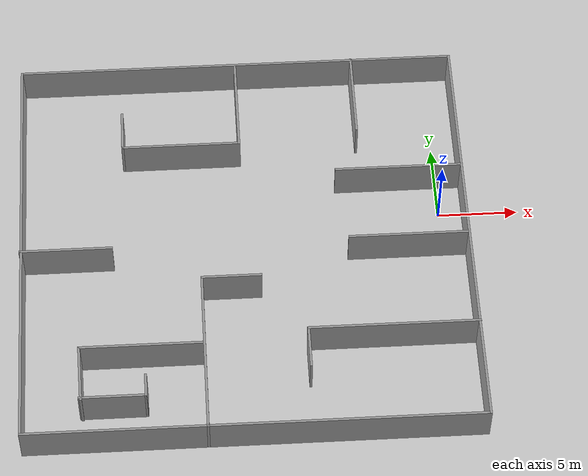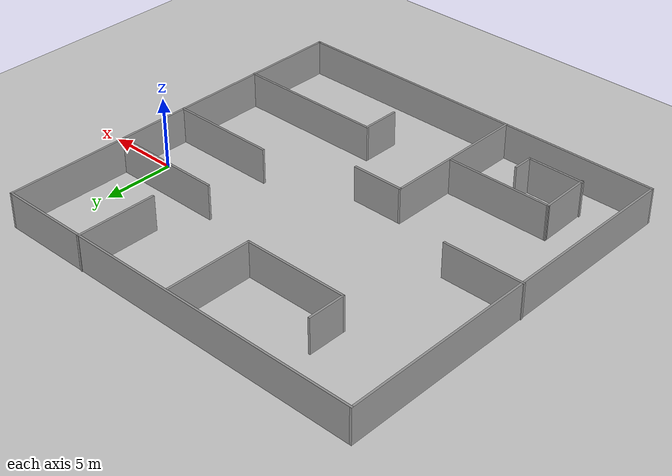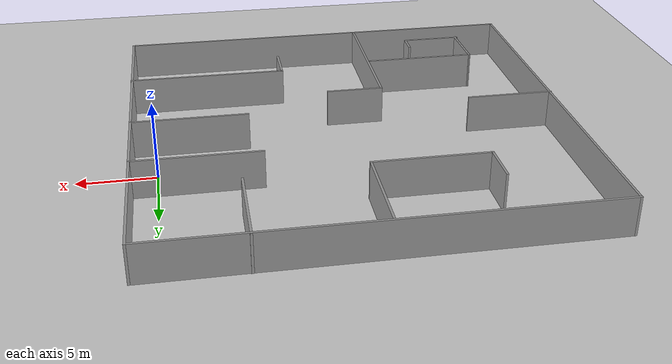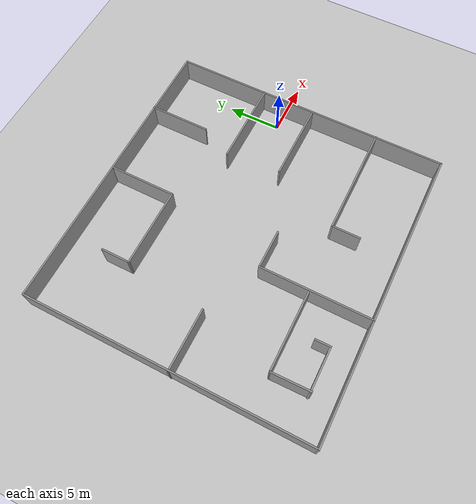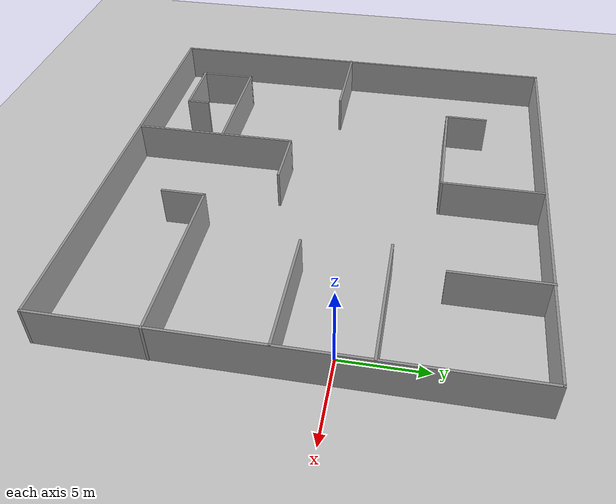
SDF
<sdf version="1.7">
 <world name="default">
  <light name="sun" type="directional">
   <pose>0 0 10 0 -0 0</pose>
   <diffuse>0.8 0.8 0.8 1</diffuse>
   <specular>0.2 0.2 0.2 1</specular>
   <attenuation>
    <range>1000</range>
    <constant>0.9</constant>
    <linear>0.01</linear>
    <quadratic>0.001</quadratic>
   </attenuation>
   <direction>-0.5 0.1 -0.9</direction>
   <spot><inner_angle>0</inner_angle><outer_angle>0</outer_angle><falloff>0</falloff></spot>
  </light>
  <model name="ground_plane">
   <static>1</static>
   <link name="link">
    <collision name="collision">
     <geometry><plane><normal>0 0 1</normal><size>100 100</size></plane></geometry>
     <surface>
      <contact><collide_bitmask>65535</collide_bitmask></contact>
      <friction><ode><mu>100</mu><mu2>50</mu2></ode></friction>
     </surface>
    </collision>
    <visual name="visual">
     <cast_shadows>0</cast_shadows>
     <geometry><plane><normal>0 0 1</normal><size>100 100</size></plane></geometry>
     <material>
      <script><uri>file://media/materials/scripts/gazebo.material</uri><name>Gazebo/Grey</name></script>
     </material>
    </visual>
   </link>
  </model>
  <physics type="ode">
   <ode>
    <solver><type>quick</type><iters>1000</iters><sor>1.3</sor></solver>
    <constraints>
     <cfm>0</cfm>
     <erp>0.2</erp>
     <contact_max_correcting_vel>100</contact_max_correcting_vel>
     <contact_surface_layer>0.001</contact_surface_layer>
    </constraints>
   </ode>
   <max_step_size>0.01</max_step_size>
   <real_time_factor>1</real_time_factor>
   <real_time_update_rate>100</real_time_update_rate>
   <gravity>0 0 -9.8</gravity>
  </physics>
  <scene><ambient>0.4 0.4 0.4 1</ambient><background>0.7 0.7 0.7 1</background><shadows>1</shadows></scene>
  <spherical_coordinates>
   <surface_model>EARTH_WGS84</surface_model>
   <latitude_deg>0</latitude_deg>
   <longitude_deg>0</longitude_deg>
   <elevation>0</elevation>
   <heading_deg>0</heading_deg>
  </spherical_coordinates>
  <model name="world1">
   <pose>-12.2737 -2.45076 0 0 -0 0</pose>
   <link name="Wall_10">
    <collision name="Wall_10_Collision">
     <geometry><box><size>7.5 0.15 2.5</size></box></geometry>
     <pose>0 0 1.25 0 -0 0</pose>
    </collision>
    <visual name="Wall_10_Visual">
     <pose>0 0 1.25 0 -0 0</pose>
     <geometry><box><size>7.5 0.15 2.5</size></box></geometry>
     <material>
      <script><uri>file://media/materials/scripts/gazebo.material</uri><name>Gazebo/Grey</name></script>
      <ambient>1 1 1 1</ambient>
     </material>
     <meta><layer>0</layer></meta>
    </visual>
    <pose>10.1072 -0.461458 0 0 -0 3.14159</pose>
   </link>
   <link name="Wall_12">
    <collision name="Wall_12_Collision">
     <geometry><box><size>10.5 0.15 2.5</size></box></geometry>
     <pose>0 0 1.25 0 -0 0</pose>
    </collision>
    <visual name="Wall_12_Visual">
     <pose>0 0 1.25 0 -0 0</pose>
     <geometry><box><size>10.5 0.15 2.5</size></box></geometry>
     <material>
      <script><uri>file://media/materials/scripts/gazebo.material</uri><name>Gazebo/Grey</name></script>
      <ambient>1 1 1 1</ambient>
     </material>
     <meta><layer>0</layer></meta>
    </visual>
    <pose>8.66877 -6.92188 0 0 -0 3.14159</pose>
   </link>
   <link name="Wall_13">
    <collision name="Wall_13_Collision">
     <geometry><box><size>2.75 0.15 2.5</size></box></geometry>
     <pose>0 0 1.25 0 -0 0</pose>
    </collision>
    <visual name="Wall_13_Visual">
     <pose>0 0 1.25 0 -0 0</pose>
     <geometry><box><size>2.75 0.15 2.5</size></box></geometry>
     <material>
      <script><uri>file://media/materials/scripts/gazebo.material</uri><name>Gazebo/Grey</name></script>
      <ambient>1 1 1 1</ambient>
     </material>
     <meta><layer>0</layer></meta>
    </visual>
    <pose>3.49377 -8.22189 0 0 -0 -1.5708</pose>
   </link>
   <link name="Wall_15">
    <collision name="Wall_15_Collision">
     <geometry><box><size>8 0.15 2.5</size></box></geometry>
     <pose>0 0 1.25 0 -0 0</pose>
    </collision>
    <visual name="Wall_15_Visual">
     <pose>0 0 1.25 0 -0 0</pose>
     <geometry><box><size>8 0.15 2.5</size></box></geometry>
     <material>
      <script><uri>file://media/materials/scripts/gazebo.material</uri><name>Gazebo/Grey</name></script>
      <ambient>1 1 1 1</ambient>
     </material>
     <meta><layer>0</layer></meta>
    </visual>
    <pose>9.85724 4.64536 0 0 -0 3.14159</pose>
   </link>
   <link name="Wall_17">
    <collision name="Wall_17_Collision">
     <geometry><box><size>6.25 0.15 2.5</size></box></geometry>
     <pose>0 0 1.25 0 -0 0</pose>
    </collision>
    <visual name="Wall_17_Visual">
     <pose>0 0 1.25 0 -0 0</pose>
     <geometry><box><size>6.25 0.15 2.5</size></box></geometry>
     <material>
      <script><uri>file://media/materials/scripts/gazebo.material</uri><name>Gazebo/Grey</name></script>
      <ambient>1 1 1 1</ambient>
     </material>
     <meta><layer>0</layer></meta>
    </visual>
    <pose>-0.061528 10.0862 0 0 -0 -1.5708</pose>
   </link>
   <link name="Wall_18">
    <collision name="Wall_18_Collision">
     <geometry><box><size>7.5 0.15 2.5</size></box></geometry>
     <pose>0 0 1.25 0 -0 0</pose>
    </collision>
    <visual name="Wall_18_Visual">
     <pose>0 0 1.25 0 -0 0</pose>
     <geometry><box><size>7.5 0.15 2.5</size></box></geometry>
     <material>
      <script><uri>file://media/materials/scripts/gazebo.material</uri><name>Gazebo/Grey</name></script>
      <ambient>1 1 1 1</ambient>
     </material>
     <meta><layer>0</layer></meta>
    </visual>
    <pose>-3.73653 7.0362 0 0 -0 3.14159</pose>
   </link>
   <link name="Wall_20">
    <collision name="Wall_20_Collision">
     <geometry><box><size>5.75 0.15 2.5</size></box></geometry>
     <pose>0 0 1.25 0 -0 0</pose>
    </collision>
    <visual name="Wall_20_Visual">
     <pose>0 0 1.25 0 -0 0</pose>
     <geometry><box><size>5.75 0.15 2.5</size></box></geometry>
     <material>
      <script><uri>file://media/materials/scripts/gazebo.material</uri><name>Gazebo/Grey</name></script>
      <ambient>1 1 1 1</ambient>
     </material>
     <meta><layer>0</layer></meta>
    </visual>
    <pose>-11.0438 -0.522986 0 0 -0 0</pose>
   </link>
   <link name="Wall_22">
    <collision name="Wall_22_Collision">
     <geometry><box><size>11 0.15 2.5</size></box></geometry>
     <pose>0 0 1.25 0 -0 0</pose>
    </collision>
    <visual name="Wall_22_Visual">
     <pose>0 0 1.25 0 -0 0</pose>
     <geometry><box><size>11 0.15 2.5</size></box></geometry>
     <material>
      <script><uri>file://media/materials/scripts/gazebo.material</uri><name>Gazebo/Grey</name></script>
      <ambient>1 1 1 1</ambient>
     </material>
     <meta><layer>0</layer></meta>
    </visual>
    <pose>-8.35724 -13.3208 0 0 -0 0</pose>
   </link>
   <link name="Wall_25">
    <collision name="Wall_25_Collision">
     <geometry><box><size>5.75 0.15 2.5</size></box></geometry>
     <pose>0 0 1.25 0 -0 0</pose>
    </collision>
    <visual name="Wall_25_Visual">
     <pose>0 0 1.25 0 -0 0</pose>
     <geometry><box><size>5.75 0.15 2.5</size></box></geometry>
     <material>
      <script><uri>file://media/materials/scripts/gazebo.material</uri><name>Gazebo/Grey</name></script>
      <ambient>1 1 1 1</ambient>
     </material>
     <meta><layer>0</layer></meta>
    </visual>
    <pose>7.44487 10.5208 0 0 -0 -1.5708</pose>
   </link>
   <link name="Wall_3">
    <collision name="Wall_3_Collision">
     <geometry><box><size>26.75 0.15 2.5</size></box></geometry>
     <pose>0 0 1.25 0 -0 0</pose>
    </collision>
    <visual name="Wall_3_Visual">
     <pose>0 0 1.25 0 -0 0</pose>
     <geometry><box><size>26.75 0.15 2.5</size></box></geometry>
     <material>
      <script><uri>file://media/materials/scripts/gazebo.material</uri><name>Gazebo/Grey</name></script>
      <ambient>1 1 1 1</ambient>
     </material>
     <meta><layer>0</layer></meta>
    </visual>
    <pose>-13.7822 -0.020784 0 0 -0 1.5708</pose>
   </link>
   <link name="Wall_30">
    <collision name="Wall_30_Collision">
     <geometry><box><size>3.75 0.15 2.5</size></box></geometry>
     <pose>0 0 1.25 0 -0 0</pose>
    </collision>
    <visual name="Wall_30_Visual">
     <pose>0 0 1.25 0 -0 0</pose>
     <geometry><box><size>3.75 0.15 2.5</size></box></geometry>
     <material>
      <script><uri>file://media/materials/scripts/gazebo.material</uri><name>Gazebo/Grey</name></script>
      <ambient>1 1 1 1</ambient>
     </material>
     <meta><layer>0</layer></meta>
    </visual>
    <pose>-0.982244 -2.97078 0 0 -0 0</pose>
   </link>
   <link name="Wall_32">
    <collision name="Wall_32_Collision">
     <geometry><box><size>2.75 0.15 2.5</size></box></geometry>
     <pose>0 0 1.25 0 -0 0</pose>
    </collision>
    <visual name="Wall_32_Visual">
     <pose>0 0 1.25 0 -0 0</pose>
     <geometry><box><size>2.75 0.15 2.5</size></box></geometry>
     <material>
      <script><uri>file://media/materials/scripts/gazebo.material</uri><name>Gazebo/Grey</name></script>
      <ambient>1 1 1 1</ambient>
     </material>
     <meta><layer>0</layer></meta>
    </visual>
    <pose>-7.41153 8.3362 0 0 -0 1.5708</pose>
   </link>
   <link name="Wall_36">
    <collision name="Wall_36_Collision">
     <geometry><box><size>7.5 0.15 2.5</size></box></geometry>
     <pose>0 0 1.25 0 -0 0</pose>
    </collision>
    <visual name="Wall_36_Visual">
     <pose>0 0 1.25 0 -0 0</pose>
     <geometry><box><size>7.5 0.15 2.5</size></box></geometry>
     <material>
      <script><uri>file://media/materials/scripts/gazebo.material</uri><name>Gazebo/Grey</name></script>
      <ambient>1 1 1 1</ambient>
     </material>
     <meta><layer>0</layer></meta>
    </visual>
    <pose>-6.62834 -7.59869 0 0 -0 3.14159</pose>
   </link>
   <link name="Wall_37">
    <collision name="Wall_37_Collision">
     <geometry><box><size>3.68723 0.15 2.5</size></box></geometry>
     <pose>0 0 1.25 0 -0 0</pose>
    </collision>
    <visual name="Wall_37_Visual">
     <pose>0 0 1.25 0 -0 0</pose>
     <geometry><box><size>3.68723 0.15 2.5</size></box></geometry>
     <material>
      <script><uri>file://media/materials/scripts/gazebo.material</uri><name>Gazebo/Grey</name></script>
      <ambient>1 1 1 1</ambient>
     </material>
     <meta><layer>0</layer></meta>
    </visual>
    <pose>-10.2627 -9.36684 0 0 -0 -1.54779</pose>
   </link>
   <link name="Wall_38">
    <collision name="Wall_38_Collision">
     <geometry><box><size>4.09315 0.15 2.5</size></box></geometry>
     <pose>0 0 1.25 0 -0 0</pose>
    </collision>
    <visual name="Wall_38_Visual">
     <pose>0 0 1.25 0 -0 0</pose>
     <geometry><box><size>4.09315 0.15 2.5</size></box></geometry>
     <material>
      <script><uri>file://media/materials/scripts/gazebo.material</uri><name>Gazebo/Grey</name></script>
      <ambient>1 1 1 1</ambient>
     </material>
     <meta><layer>0</layer></meta>
    </visual>
    <pose>-8.33177 -11.0536 0 0 -0 0</pose>
   </link>
   <link name="Wall_4">
    <collision name="Wall_4_Collision">
     <geometry><box><size>27.75 0.15 2.5</size></box></geometry>
     <pose>0 0 1.25 0 -0 0</pose>
    </collision>
    <visual name="Wall_4_Visual">
     <pose>0 0 1.25 0 -0 0</pose>
     <geometry><box><size>27.75 0.15 2.5</size></box></geometry>
     <material>
      <script><uri>file://media/materials/scripts/gazebo.material</uri><name>Gazebo/Grey</name></script>
      <ambient>1 1 1 1</ambient>
     </material>
     <meta><layer>0</layer></meta>
    </visual>
    <pose>0.017756 13.2792 0 0 -0 0</pose>
   </link>
   <link name="Wall_41">
    <collision name="Wall_41_Collision">
     <geometry><box><size>1.5 0.15 2.5</size></box></geometry>
     <pose>0 0 1.25 0 -0 0</pose>
    </collision>
    <visual name="Wall_41_Visual">
     <pose>0 0 1.25 0 -0 0</pose>
     <geometry><box><size>1.5 0.15 2.5</size></box></geometry>
     <material>
      <script><uri>file://media/materials/scripts/gazebo.material</uri><name>Gazebo/Grey</name></script>
      <ambient>1 1 1 1</ambient>
     </material>
     <meta><layer>0</layer></meta>
    </visual>
    <pose>-6.36019 -10.3786 0 0 -0 1.5708</pose>
   </link>
   <link name="Wall_5">
    <collision name="Wall_5_Collision">
     <geometry><box><size>26.75 0.15 2.5</size></box></geometry>
     <pose>0 0 1.25 0 -0 0</pose>
    </collision>
    <visual name="Wall_5_Visual">
     <pose>0 0 1.25 0 -0 0</pose>
     <geometry><box><size>26.75 0.15 2.5</size></box></geometry>
     <material>
      <script><uri>file://media/materials/scripts/gazebo.material</uri><name>Gazebo/Grey</name></script>
      <ambient>1 1 1 1</ambient>
     </material>
     <meta><layer>0</layer></meta>
    </visual>
    <pose>13.8178 -0.020784 0 0 -0 -1.5708</pose>
   </link>
   <link name="Wall_6">
    <collision name="Wall_6_Collision">
     <geometry><box><size>16.75 0.15 2.5</size></box></geometry>
     <pose>0 0 1.25 0 -0 0</pose>
    </collision>
    <visual name="Wall_6_Visual">
     <pose>0 0 1.25 0 -0 0</pose>
     <geometry><box><size>16.75 0.15 2.5</size></box></geometry>
     <material>
      <script><uri>file://media/materials/scripts/gazebo.material</uri><name>Gazebo/Grey</name></script>
      <ambient>1 1 1 1</ambient>
     </material>
     <meta><layer>0</layer></meta>
    </visual>
    <pose>5.51776 -13.3208 0 0 -0 3.14159</pose>
   </link>
   <link name="Wall_7">
    <collision name="Wall_7_Collision">
     <geometry><box><size>10.5 0.15 2.5</size></box></geometry>
     <pose>0 0 1.25 0 -0 0</pose>
    </collision>
    <visual name="Wall_7_Visual">
     <pose>0 0 1.25 0 -0 0</pose>
     <geometry><box><size>10.5 0.15 2.5</size></box></geometry>
     <material>
      <script><uri>file://media/materials/scripts/gazebo.material</uri><name>Gazebo/Grey</name></script>
      <ambient>1 1 1 1</ambient>
     </material>
     <meta><layer>0</layer></meta>
    </visual>
    <pose>-2.78224 -8.14578 0 0 -0 1.5708</pose>
   </link>
   <static>1</static>
  </model>
  <plugin name="ros_interface_plugin" filename="librotors_gazebo_ros_interface_plugin.so"/>
 </world>
</sdf>
